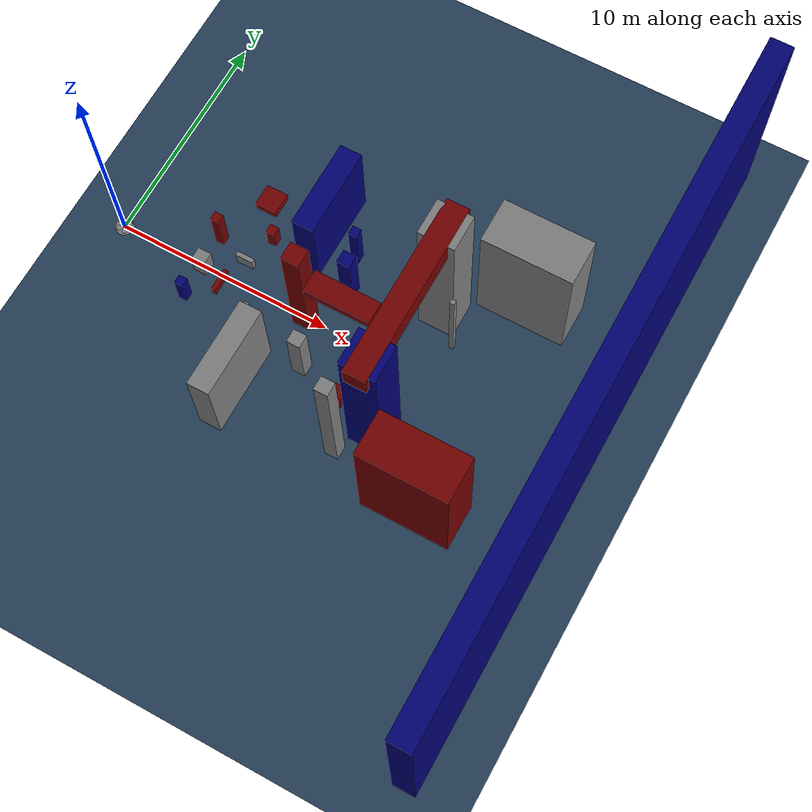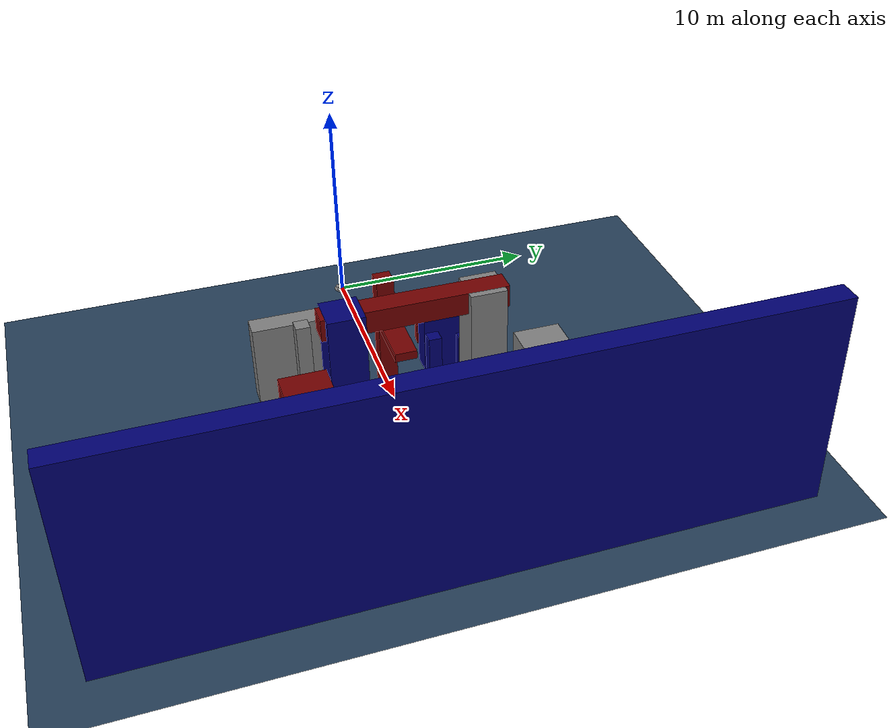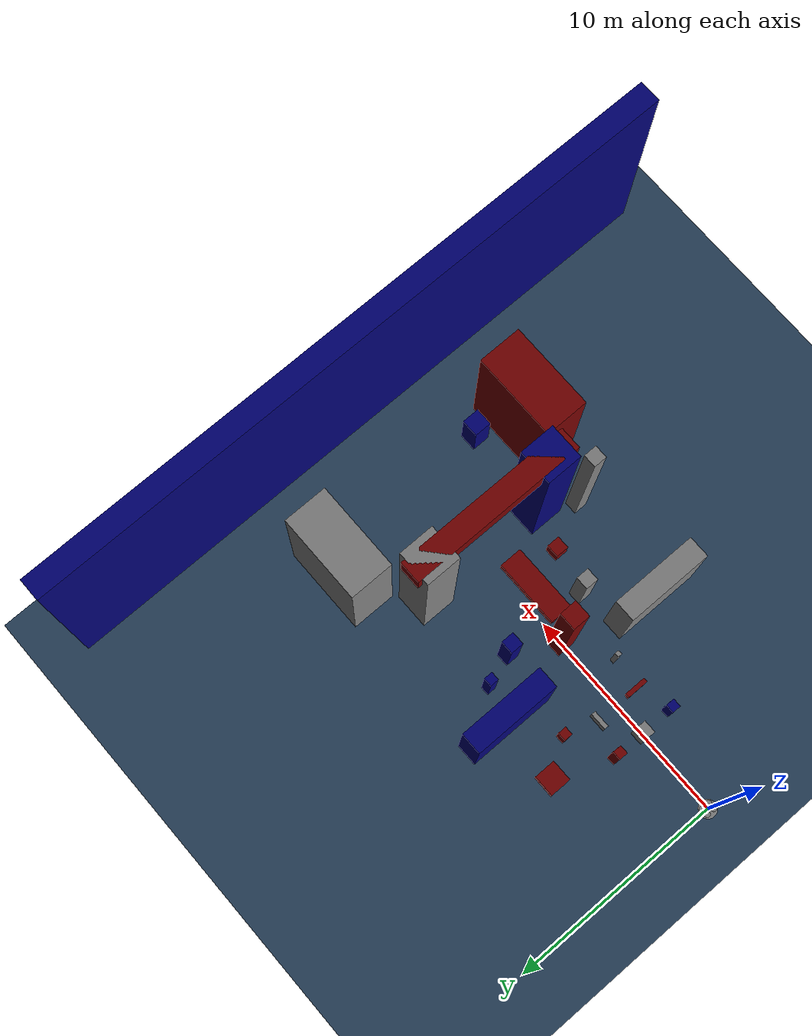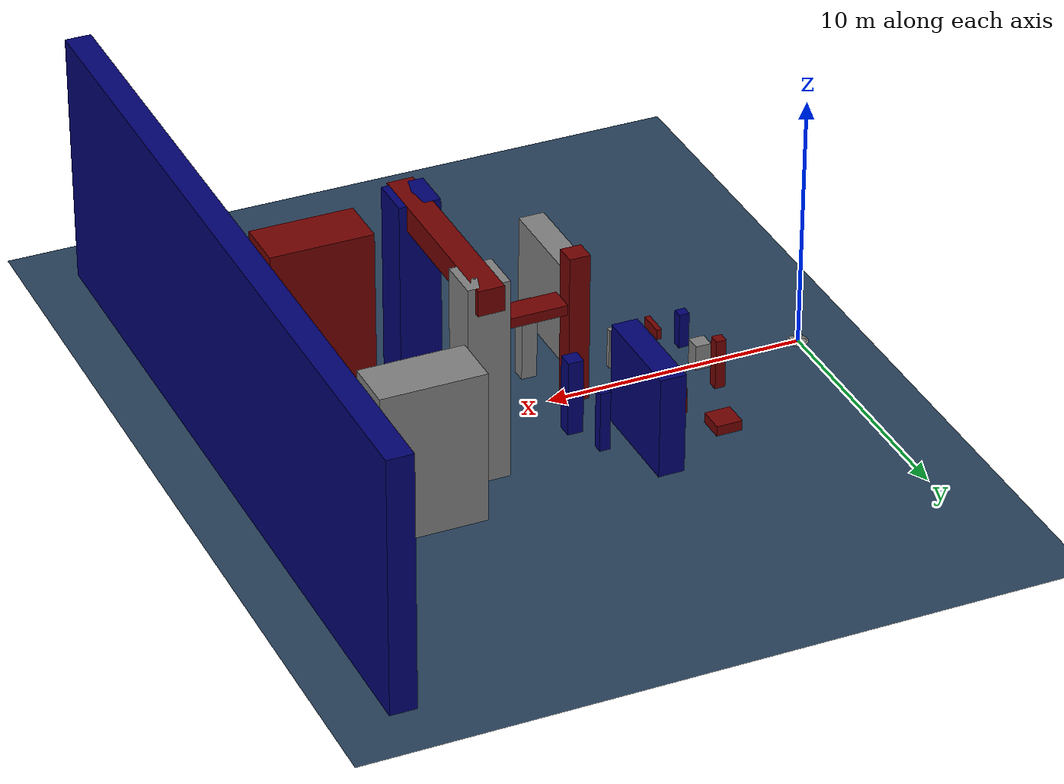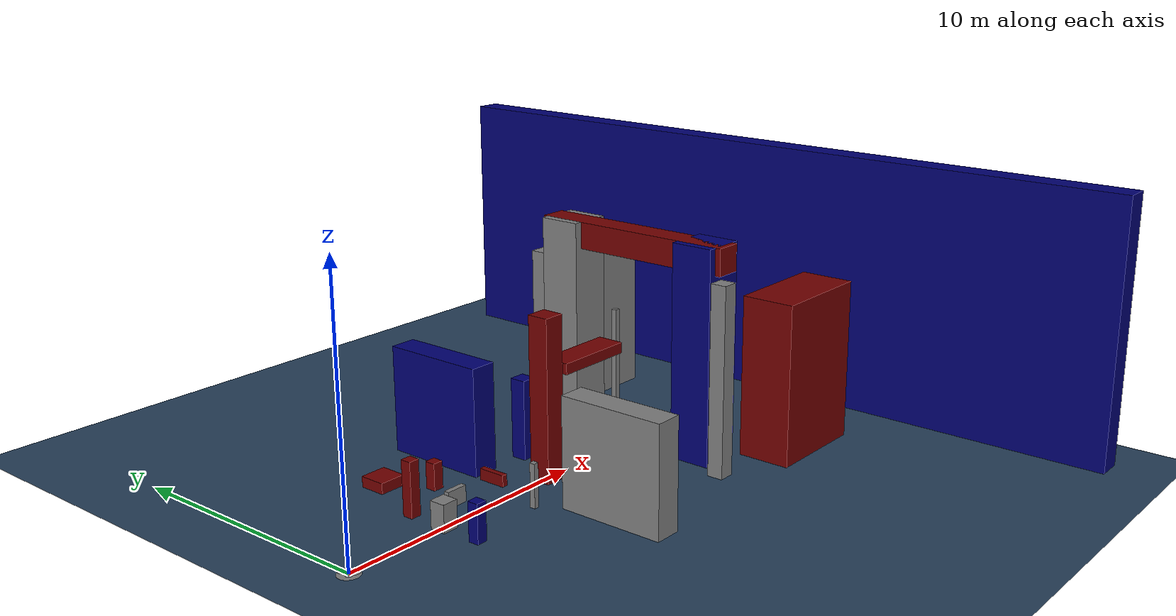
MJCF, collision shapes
<mujoco model="Skydio X2 Parallax Forest Matte">

  <statistic center="5 0 2" extent="10" meansize=".2"/>

  <visual>
    <headlight diffuse="0.9 0.9 0.9" ambient="0.5 0.5 0.5" specular="0 0 0"/>
    <map haze=".0" zfar="100" znear="0.05"/>
    <rgba haze="0 0 0 0"/>
    <global azimuth="-20" elevation="20" ellipsoidinertia="true" offwidth="800" offheight="600"/>
  </visual>

  <asset>
    <texture type="skybox" builtin="gradient" rgb1="0.5 0.6 0.7" rgb2="0.1 0.1 0.1" width="512" height="3072"/>

    <texture type="2d" name="tex_floor" builtin="checker" rgb1="0.2 0.3 0.4" rgb2="0.1 0.2 0.3" width="512" height="512" mark="edge" markrgb="0.5 0.5 0.5"/>

    <texture type="2d" name="tex_BW" builtin="checker" rgb1="0.9 0.9 0.9" rgb2="0.1 0.1 0.1" width="512" height="512" mark="cross" markrgb="0.5 0.5 0.5"/>

    <texture type="2d" name="tex_Red" builtin="checker" rgb1="0.8 0 0" rgb2="0.1 0 0" width="512" height="512" mark="edge" markrgb="1 1 1"/>
    <texture type="2d" name="tex_Blue" builtin="checker" rgb1="0 0 0.8" rgb2="0 0 0.1" width="512" height="512" mark="edge" markrgb="1 1 1"/>

    <material name="MatFloor" texture="tex_floor" texuniform="true" texrepeat="50 50" reflectance="0" specular="0" shininess="0"/>

    <material name="MatBW" texture="tex_BW" texuniform="true" texrepeat="15 15" reflectance="0" specular="0" shininess="0"/>
    <material name="MatRed" texture="tex_Red" texuniform="true" texrepeat="15 15" reflectance="0" specular="0" shininess="0"/>
    <material name="MatBlue" texture="tex_Blue" texuniform="true" texrepeat="15 15" reflectance="0" specular="0" shininess="0"/>
  </asset>

  <option gravity="0 0 -9.8" magnetic="1 0 0"/>

  <include file="my_x2.xml"/>

<worldbody>
    <light pos="0 0 100" dir="0 0 -1" directional="true"/>
    <geom name="floor" size="100 100 0.05" type="plane" material="MatFloor"/>

    <geom name="z1_c" pos="4 0 0.5" size="0.3 0.3 0.5" type="box" material="MatBW"/>
    <geom name="z1_l" pos="4 1.5 1" size="0.2 0.2 1" type="box" material="MatRed"/>
    <geom name="z1_r" pos="4 -1.5 0.7" size="0.2 0.2 0.7" type="box" material="MatBlue"/>
    <geom name="z1_obs1" pos="5.5 1 0.3" size="0.4 0.1 0.3" type="box" material="MatBW"/>
    <geom name="z1_obs2" pos="5.5 -0.8 1.5" size="0.1 0.5 0.2" type="box" material="MatRed"/>

    <geom name="z2_wall_l" pos="8 4 2" size="0.5 2 2" type="box" material="MatBlue"/>
    <geom name="z2_wall_r" pos="8 -4 2" size="0.5 2 2" type="box" material="MatBW"/>
    <geom name="z2_pillar1" pos="9 0 3" size="0.4 0.4 3" type="box" material="MatRed"/>
    <geom name="z2_pillar2" pos="10 2 1.5" size="0.3 0.3 1.5" type="box" material="MatBlue"/>
    <geom name="z2_pillar3" pos="10 -2 1.5" size="0.3 0.3 1.5" type="box" material="MatBW"/>
    <geom name="z2_float" pos="11 0 4" size="1.5 0.5 0.2" type="box" material="MatRed"/>

    <geom name="z3_gate_l" pos="14 3 4" size="0.8 0.8 4" type="box" material="MatBW"/>
    <geom name="z3_gate_r" pos="14 -3 4" size="0.8 0.8 4" type="box" material="MatBlue"/>
    <geom name="z3_bar" pos="14 0 7.5" size="0.5 4 0.5" type="box" material="MatRed"/>
    <geom name="z3_block1" pos="17 5 3" size="2 1 3" type="box" material="MatBW"/>
    <geom name="z3_block2" pos="17 -5 3" size="2 1 3" type="box" material="MatRed"/>
    <geom name="z3_final_wall" pos="22 0 5" size="0.5 15 5" type="box" material="MatBlue"/>

    <geom name="f1" pos="6 2.5 0.5" size="0.2 0.2 0.5" type="box" material="MatRed"/>
    <geom name="f2" pos="7 -1.2 0.8" size="0.1 0.1 0.8" type="box" material="MatBW"/>
    <geom name="f3" pos="9.5 3.5 1.2" size="0.2 0.2 1.2" type="box" material="MatBlue"/>
    <geom name="f4" pos="12 -2.5 0.4" size="0.3 0.3 0.4" type="box" material="MatRed"/>
    <geom name="f5" pos="15 1.8 2.2" size="0.1 0.1 2.2" type="box" material="MatBW"/>
    <geom name="f6" pos="18 -3.2 1.0" size="0.4 0.4 1.0" type="box" material="MatBlue"/>
    <geom name="f7" pos="5 4 0.2" size="0.5 0.5 0.2" type="box" material="MatRed"/>
    <geom name="f8" pos="13 -4.5 3.5" size="0.3 0.3 3.5" type="box" material="MatBW"/>

  </worldbody>
</mujoco>

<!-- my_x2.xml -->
<mujoco model="Skydio X2">
  <compiler autolimits="true" assetdir="assets_x2"/>

  <option timestep="0.01" density="1.225" viscosity="1.8e-5"/>

  <default>
    <default class="x2">
        <geom mass="0"/>
        <motor ctrlrange="0 13"/>
        <mesh scale="0.01 0.01 0.01"/>

        <default class="visual">
          <geom group="2" type="mesh" contype="0" conaffinity="0"/>
        </default>

        <default class="collision">
          <geom group="3" type="box"/>
          <default class="rotor">
            <geom type="ellipsoid" size=".13 .13 .01"/>
          </default>
      </default>
      <site group="5"/>
    </default>
  </default>

  <asset>
    <texture type="2d" file="X2_lowpoly_texture_SpinningProps_1024.png"/>
    <material name="phong3SG" texture="X2_lowpoly_texture_SpinningProps_1024"/>
    <material name="invisible" rgba="0 0 0 0"/>

    <mesh class="x2" file="X2_lowpoly.obj"/>
  </asset>

  <worldbody>
    <light name="spotlight" mode="targetbodycom" target="x2" pos="0 -1 2"/>
    <body>
      <geom type="cylinder" size="0.4 0.000001"></geom>
    </body>

    <body name="x2" pos="0 0 0" childclass="x2">
      <freejoint/>

      <camera name="track" pos="-1 0 .5" xyaxes="0 -1 0 1 0 2" mode="trackcom"/>

      <site name="imu" pos="0 0 .02"/>

      <body name="geometry_wrapper" euler="0 0 180">
          <body name="cam_mount" pos="-0.15 -0.01 .07" euler="90 90 0">
            <camera name="drone_camera_l" pos="0 0 0" euler="0 0 0" mode="fixed"/>
            <camera name="drone_camera_r" pos="0.03 0 0" euler="0 0 0" mode="fixed"/>
          </body>
          <geom material="phong3SG" mesh="X2_lowpoly" class="visual" quat="0 0 1 1" mass=".001"/>
          <geom class="collision" size=".06 .027 .02" pos=".04 0 .02"/>
          <geom class="collision" size=".06 .027 .02" pos=".04 0 .06"/>
          <geom class="collision" size=".05 .027 .02" pos="-.07 0 .065"/>
          <geom class="collision" size=".023 .017 .01" pos="-.137 .008 .065" quat="1 0 0 1"/>
      </body>
          <geom name="rotor1" class="rotor" pos=".14 -.18 .05" mass=".25"/>
          <geom name="rotor2" class="rotor" pos=".14 .18 .05" mass=".25"/>
          <geom name="rotor3" class="rotor" pos="-.14 .18 .08" mass=".25"/>
          <geom name="rotor4" class="rotor" pos="-.14 -.18 .08" mass=".25"/>
          <geom size=".16 .04 .02" pos="0 0 0.02" type="ellipsoid" mass=".325" class="visual" material="invisible"/>

          <site name="thrust1" pos=".14 -.18 .05"/>
          <site name="thrust2" pos=".14 .18 .05"/>
          <site name="thrust3" pos="-.14 .18 .08"/>
          <site name="thrust4" pos="-.14 -.18 .08"/>

    </body>
  </worldbody>

  <actuator>
    <motor class="x2" name="thrust1" site="thrust1" gear="0 0 1 0 0 -.0201"/>
    <motor class="x2" name="thrust2" site="thrust2" gear="0 0 1 0 0  .0201"/>
    <motor class="x2" name="thrust3" site="thrust3" gear="0 0 1 0 0 -.0201"/>
    <motor class="x2" name="thrust4" site="thrust4" gear="0 0 1 0 0  .0201"/>
  </actuator>

  <sensor>
    <gyro name="body_angvel" site="imu"/>
    <accelerometer name="body_linacc" site="imu"/>
    <velocimeter name="body_linvel" site="imu"/>
    <magnetometer name="body_mag" site="imu"/>

    <framepos name="global_pos" objtype="site" objname="imu"/>
    <framequat name="global_quat" objtype="site" objname="imu"/>
    <framelinvel name="global_linvel" objtype="site" objname="imu"/>
    ⁠<frameangvel name="global_angvel" objtype="site" objname="imu"/>
    <framelinacc name="global_linacc" objtype="site" objname="imu"/>
    <frameangacc name="global_angacc" objtype="site" objname="imu"/>
  </sensor>

  <keyframe>
    <key name="hover" qpos="0 0 .3 1 0 0 0" ctrl="3.2495625 3.2495625 3.2495625 3.2495625"/>
  </keyframe>
</mujoco>
